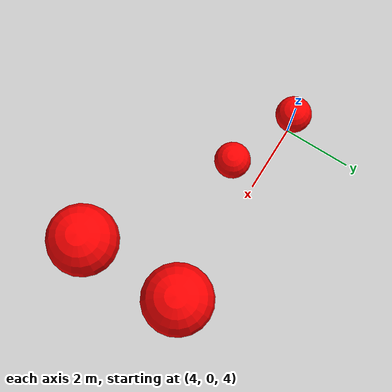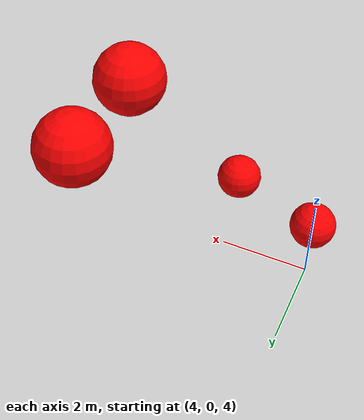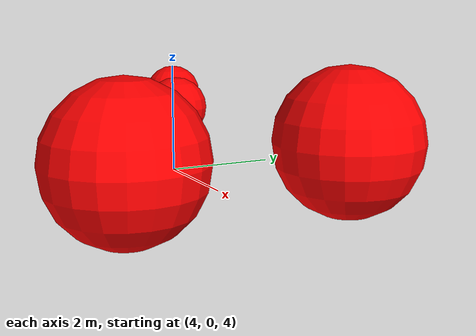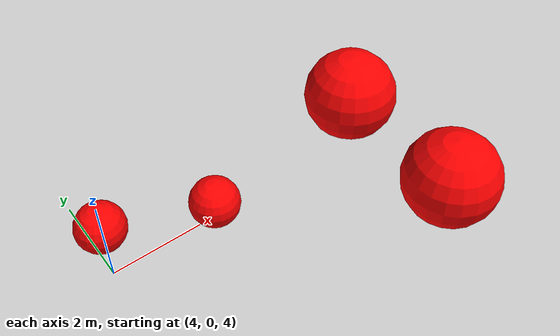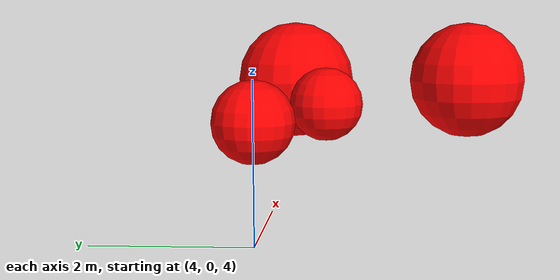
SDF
<sdf version="1.4">
<model name="dd_robot">
    <pose>0 0 5.5 0 0 0</pose>

   <link name="link2">
   <pose>10 0 0 0 0 0</pose>
        <inertial>
            <mass>1.0</mass>
            <inertia>
                <ixx>0.083</ixx>
                <ixy>0</ixy>
                <ixz>0</ixz>
                <iyy>0.083</iyy>
                <iyz>0</iyz>
                <izz>0.083</izz>
            </inertia>
        </inertial>
        <collision name="link_col">
            <geometry>
                <sphere>
                    <radius> 1  </radius>
                </sphere>
            </geometry>
        </collision>
        <visual name="link_vis">
            <geometry>
                <sphere>
                    <radius> 1  </radius>
                </sphere>
            </geometry>
            <material>
                <ambient>1 0 0 1</ambient>
                <diffuse>1 0 0 1</diffuse>
                <specular>0.1 0.1 0.1 1</specular>
                <emissive>0 0 0 0</emissive>
            </material>
        </visual>
    </link>

    <link name="link3">
   <pose>10 -3 0 0 0 0</pose>
        <inertial>
            <mass>1.0</mass>
            <inertia>
                <ixx>0.083</ixx>
                <ixy>0</ixy>
                <ixz>0</ixz>
                <iyy>0.083</iyy>
                <iyz>0</iyz>
                <izz>0.083</izz>
            </inertia>
        </inertial>
        <collision name="link_col">
            <geometry>
                <sphere>
                    <radius> 1  </radius>
                </sphere>
            </geometry>
        </collision>
        <visual name="link_vis">
            <geometry>
                <sphere>
                    <radius> 1  </radius>
                </sphere>
            </geometry>
            <material>
                <ambient>1 0 0 1</ambient>
                <diffuse>1 0 0 1</diffuse>
                <specular>0.1 0.1 0.1 1</specular>
                <emissive>0 0 0 0</emissive>
            </material>
        </visual>
    </link>

    <link name="link4">
   <pose>4 0 0 0 0 0</pose>
        <inertial>
            <mass>10.0</mass>
            <inertia>
                <ixx>0.083</ixx>
                <ixy>0</ixy>
                <ixz>0</ixz>
                <iyy>0.083</iyy>
                <iyz>0</iyz>
                <izz>0.083</izz>
            </inertia>
        </inertial>
        <collision name="link_col">
            <geometry>
                <sphere>
                    <radius> .5  </radius>
                </sphere>
            </geometry>
        </collision>
        <visual name="link_vis">
            <geometry>
                <sphere>
                    <radius> .5  </radius>
                </sphere>
            </geometry>
            <material>
                <ambient>1 0 0 1</ambient>
                <diffuse>1 0 0 1</diffuse>
                <specular>0.1 0.1 0.1 1</specular>
                <emissive>0 0 0 0</emissive>
            </material>
        </visual>
    </link>

     <link name="link6">
   <pose>6 -.75 0 0 0 0</pose>
        <inertial>
            <mass>10.0</mass>
            <inertia>
                <ixx>0.083</ixx>
                <ixy>0</ixy>
                <ixz>0</ixz>
                <iyy>0.083</iyy>
                <iyz>0</iyz>
                <izz>0.083</izz>
            </inertia>
        </inertial>
        <collision name="link_col">
            <geometry>
                <sphere>
                    <radius> .5  </radius>
                </sphere>
            </geometry>
        </collision>
        <visual name="link_vis">
            <geometry>
                <sphere>
                    <radius> .5  </radius>
                </sphere>
            </geometry>
            <material>
                <ambient>1 0 0 1</ambient>
                <diffuse>1 0 0 1</diffuse>
                <specular>0.1 0.1 0.1 1</specular>
                <emissive>0 0 0 0</emissive>
            </material>
        </visual>
    </link>

</model>
</sdf>
